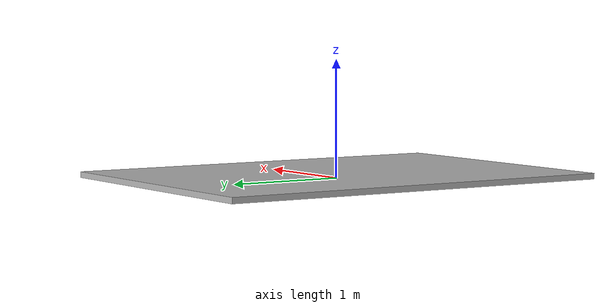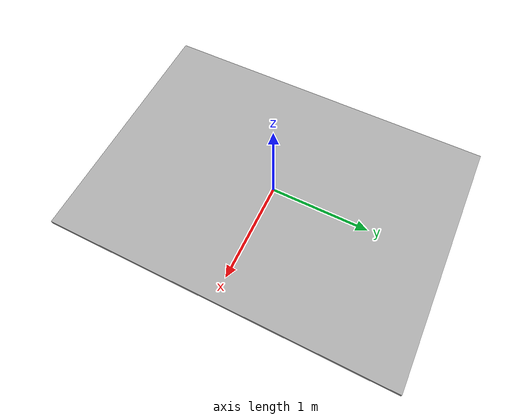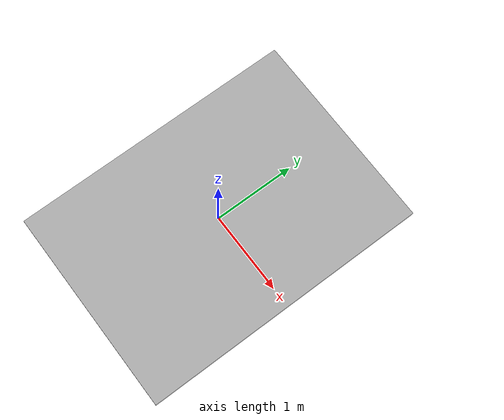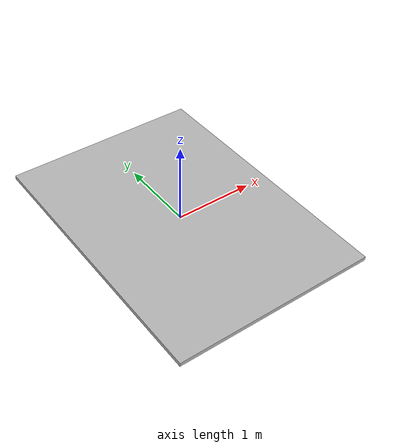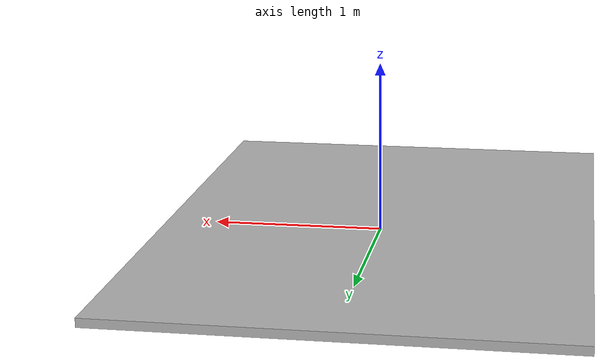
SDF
<?xml version="1" ?>
<sdf version="1.7">
  <model name="laberinto_letra">
    <static>false</static>
    <link name="link">
      <collision name="surface">
        <pose>0 0 0 0 0</pose>
        <geometry>
          <box>
            <size>2.5 3.5 0.05</size>
          </box>
        </geometry>
      </collision>

      <visual name="visual">
        <geometry>
          <mesh>
            <uri>model://laberinto_1/lab_mat_.DAE</uri>
          </mesh>
        </geometry>
      </visual>
    </link>
  </model>
</sdf>
